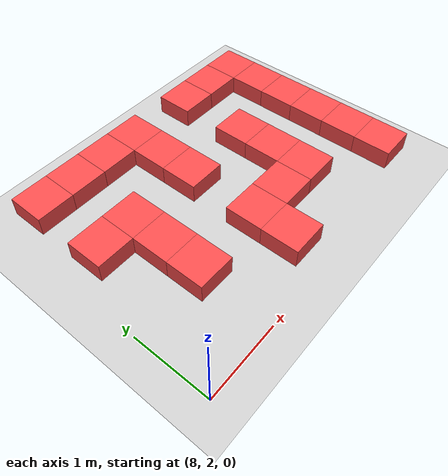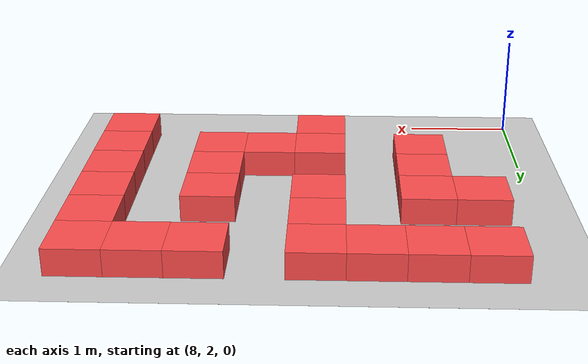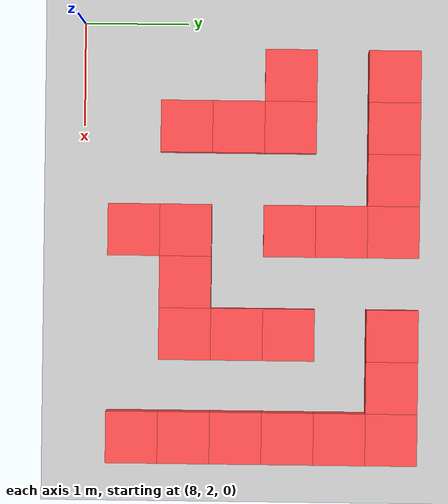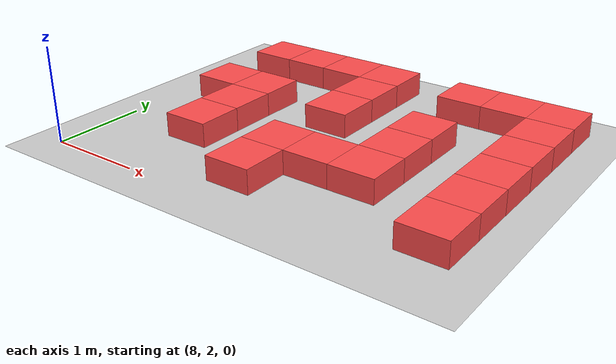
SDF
<sdf version="1.6">
 <world name="default">
  <model name="ground_plane">
   <static>1</static>
   <link name="link">
    <collision name="collision">
     <geometry><plane><normal>0 0 1</normal><size>100 100</size></plane></geometry>
     <surface><friction><ode><mu>100</mu><mu2>50</mu2></ode></friction></surface>
    </collision>
    <visual name="visual">
     <cast_shadows>0</cast_shadows>
     <geometry><plane><normal>0 0 1</normal><size>100 100</size></plane></geometry>
     <material>
      <script><uri>file://media/materials/scripts/gazebo.material</uri><name>Gazebo/Grey</name></script>
     </material>
    </visual>
   </link>
  </model>
  <model name="Box_Red_433">
   <link name="link_0">
    <inertial>
     <mass>1</mass>
     <inertia>
      <ixx>0.166667</ixx>
      <ixy>0</ixy>
      <ixz>0</ixz>
      <iyy>0.166667</iyy>
      <iyz>0</iyz>
      <izz>0.166667</izz>
     </inertia>
    </inertial>
    <visual name="visual">
     <geometry><box><size>0.5 0.5 0.5</size></box></geometry>
     <material>
      <lighting>1</lighting>
      <script><uri>file://media/materials/scripts/gazebo.material</uri><name>Gazebo/Grey</name></script>
      <ambient>1 0.3 0.3 1</ambient>
      <diffuse>0.7 0.7 0.7 1</diffuse>
      <specular>0.01 0.01 0.01 1</specular>
      <emissive>0 0 0 1</emissive>
      <shader type="vertex"><normal_map>__default__</normal_map></shader>
     </material>
    </visual>
    <collision name="collision">
     <geometry><box><size>0.5 0.5 0.5</size></box></geometry>
     <surface>
      <friction>
       <ode><mu>1</mu><mu2>1</mu2><fdir1>0 0 0</fdir1><slip1>0</slip1><slip2>0</slip2></ode>
       <torsional>
        <coefficient>1</coefficient>
        <patch_radius>0</patch_radius>
        <surface_radius>0</surface_radius>
        <use_patch_radius>1</use_patch_radius>
        <ode><slip>0</slip></ode>
       </torsional>
      </friction>
      <bounce><restitution_coefficient>0</restitution_coefficient><threshold>1e+06</threshold></bounce>
      <contact>
       <collide_without_contact>0</collide_without_contact>
       <collide_without_contact_bitmask>1</collide_without_contact_bitmask>
       <collide_bitmask>1</collide_bitmask>
       <ode>
        <soft_cfm>0</soft_cfm>
        <soft_erp>0.2</soft_erp>
        <kp>1e+13</kp>
        <kd>1</kd>
        <max_vel>0.01</max_vel>
        <min_depth>0</min_depth>
       </ode>
       <bullet>
        <split_impulse>1</split_impulse>
        <split_impulse_penetration_threshold>-0.01</split_impulse_penetration_threshold>
        <soft_cfm>0</soft_cfm>
        <soft_erp>0.2</soft_erp>
        <kp>1e+13</kp>
        <kd>1</kd>
       </bullet>
      </contact>
     </surface>
    </collision>
   </link>
   <static>0</static>
   <pose>8.500 4.000 0.000 0 0 0</pose>
  </model>
  <model name="Box_Red_435">
   <link name="link_0">
    <inertial>
     <mass>1</mass>
     <inertia>
      <ixx>0.166667</ixx>
      <ixy>0</ixy>
      <ixz>0</ixz>
      <iyy>0.166667</iyy>
      <iyz>0</iyz>
      <izz>0.166667</izz>
     </inertia>
    </inertial>
    <visual name="visual">
     <geometry><box><size>0.5 0.5 0.5</size></box></geometry>
     <material>
      <lighting>1</lighting>
      <script><uri>file://media/materials/scripts/gazebo.material</uri><name>Gazebo/Grey</name></script>
      <ambient>1 0.3 0.3 1</ambient>
      <diffuse>0.7 0.7 0.7 1</diffuse>
      <specular>0.01 0.01 0.01 1</specular>
      <emissive>0 0 0 1</emissive>
      <shader type="vertex"><normal_map>__default__</normal_map></shader>
     </material>
    </visual>
    <collision name="collision">
     <geometry><box><size>0.5 0.5 0.5</size></box></geometry>
     <surface>
      <friction>
       <ode><mu>1</mu><mu2>1</mu2><fdir1>0 0 0</fdir1><slip1>0</slip1><slip2>0</slip2></ode>
       <torsional>
        <coefficient>1</coefficient>
        <patch_radius>0</patch_radius>
        <surface_radius>0</surface_radius>
        <use_patch_radius>1</use_patch_radius>
        <ode><slip>0</slip></ode>
       </torsional>
      </friction>
      <bounce><restitution_coefficient>0</restitution_coefficient><threshold>1e+06</threshold></bounce>
      <contact>
       <collide_without_contact>0</collide_without_contact>
       <collide_without_contact_bitmask>1</collide_without_contact_bitmask>
       <collide_bitmask>1</collide_bitmask>
       <ode>
        <soft_cfm>0</soft_cfm>
        <soft_erp>0.2</soft_erp>
        <kp>1e+13</kp>
        <kd>1</kd>
        <max_vel>0.01</max_vel>
        <min_depth>0</min_depth>
       </ode>
       <bullet>
        <split_impulse>1</split_impulse>
        <split_impulse_penetration_threshold>-0.01</split_impulse_penetration_threshold>
        <soft_cfm>0</soft_cfm>
        <soft_erp>0.2</soft_erp>
        <kp>1e+13</kp>
        <kd>1</kd>
       </bullet>
      </contact>
     </surface>
    </collision>
   </link>
   <static>0</static>
   <pose>8.500 5.000 0.000 0 0 0</pose>
  </model>
  <model name="Box_Red_456">
   <link name="link_0">
    <inertial>
     <mass>1</mass>
     <inertia>
      <ixx>0.166667</ixx>
      <ixy>0</ixy>
      <ixz>0</ixz>
      <iyy>0.166667</iyy>
      <iyz>0</iyz>
      <izz>0.166667</izz>
     </inertia>
    </inertial>
    <visual name="visual">
     <geometry><box><size>0.5 0.5 0.5</size></box></geometry>
     <material>
      <lighting>1</lighting>
      <script><uri>file://media/materials/scripts/gazebo.material</uri><name>Gazebo/Grey</name></script>
      <ambient>1 0.3 0.3 1</ambient>
      <diffuse>0.7 0.7 0.7 1</diffuse>
      <specular>0.01 0.01 0.01 1</specular>
      <emissive>0 0 0 1</emissive>
      <shader type="vertex"><normal_map>__default__</normal_map></shader>
     </material>
    </visual>
    <collision name="collision">
     <geometry><box><size>0.5 0.5 0.5</size></box></geometry>
     <surface>
      <friction>
       <ode><mu>1</mu><mu2>1</mu2><fdir1>0 0 0</fdir1><slip1>0</slip1><slip2>0</slip2></ode>
       <torsional>
        <coefficient>1</coefficient>
        <patch_radius>0</patch_radius>
        <surface_radius>0</surface_radius>
        <use_patch_radius>1</use_patch_radius>
        <ode><slip>0</slip></ode>
       </torsional>
      </friction>
      <bounce><restitution_coefficient>0</restitution_coefficient><threshold>1e+06</threshold></bounce>
      <contact>
       <collide_without_contact>0</collide_without_contact>
       <collide_without_contact_bitmask>1</collide_without_contact_bitmask>
       <collide_bitmask>1</collide_bitmask>
       <ode>
        <soft_cfm>0</soft_cfm>
        <soft_erp>0.2</soft_erp>
        <kp>1e+13</kp>
        <kd>1</kd>
        <max_vel>0.01</max_vel>
        <min_depth>0</min_depth>
       </ode>
       <bullet>
        <split_impulse>1</split_impulse>
        <split_impulse_penetration_threshold>-0.01</split_impulse_penetration_threshold>
        <soft_cfm>0</soft_cfm>
        <soft_erp>0.2</soft_erp>
        <kp>1e+13</kp>
        <kd>1</kd>
       </bullet>
      </contact>
     </surface>
    </collision>
   </link>
   <static>0</static>
   <pose>9.000 3.000 0.000 0 0 0</pose>
  </model>
  <model name="Box_Red_457">
   <link name="link_0">
    <inertial>
     <mass>1</mass>
     <inertia>
      <ixx>0.166667</ixx>
      <ixy>0</ixy>
      <ixz>0</ixz>
      <iyy>0.166667</iyy>
      <iyz>0</iyz>
      <izz>0.166667</izz>
     </inertia>
    </inertial>
    <visual name="visual">
     <geometry><box><size>0.5 0.5 0.5</size></box></geometry>
     <material>
      <lighting>1</lighting>
      <script><uri>file://media/materials/scripts/gazebo.material</uri><name>Gazebo/Grey</name></script>
      <ambient>1 0.3 0.3 1</ambient>
      <diffuse>0.7 0.7 0.7 1</diffuse>
      <specular>0.01 0.01 0.01 1</specular>
      <emissive>0 0 0 1</emissive>
      <shader type="vertex"><normal_map>__default__</normal_map></shader>
     </material>
    </visual>
    <collision name="collision">
     <geometry><box><size>0.5 0.5 0.5</size></box></geometry>
     <surface>
      <friction>
       <ode><mu>1</mu><mu2>1</mu2><fdir1>0 0 0</fdir1><slip1>0</slip1><slip2>0</slip2></ode>
       <torsional>
        <coefficient>1</coefficient>
        <patch_radius>0</patch_radius>
        <surface_radius>0</surface_radius>
        <use_patch_radius>1</use_patch_radius>
        <ode><slip>0</slip></ode>
       </torsional>
      </friction>
      <bounce><restitution_coefficient>0</restitution_coefficient><threshold>1e+06</threshold></bounce>
      <contact>
       <collide_without_contact>0</collide_without_contact>
       <collide_without_contact_bitmask>1</collide_without_contact_bitmask>
       <collide_bitmask>1</collide_bitmask>
       <ode>
        <soft_cfm>0</soft_cfm>
        <soft_erp>0.2</soft_erp>
        <kp>1e+13</kp>
        <kd>1</kd>
        <max_vel>0.01</max_vel>
        <min_depth>0</min_depth>
       </ode>
       <bullet>
        <split_impulse>1</split_impulse>
        <split_impulse_penetration_threshold>-0.01</split_impulse_penetration_threshold>
        <soft_cfm>0</soft_cfm>
        <soft_erp>0.2</soft_erp>
        <kp>1e+13</kp>
        <kd>1</kd>
       </bullet>
      </contact>
     </surface>
    </collision>
   </link>
   <static>0</static>
   <pose>9.000 3.500 0.000 0 0 0</pose>
  </model>
  <model name="Box_Red_458">
   <link name="link_0">
    <inertial>
     <mass>1</mass>
     <inertia>
      <ixx>0.166667</ixx>
      <ixy>0</ixy>
      <ixz>0</ixz>
      <iyy>0.166667</iyy>
      <iyz>0</iyz>
      <izz>0.166667</izz>
     </inertia>
    </inertial>
    <visual name="visual">
     <geometry><box><size>0.5 0.5 0.5</size></box></geometry>
     <material>
      <lighting>1</lighting>
      <script><uri>file://media/materials/scripts/gazebo.material</uri><name>Gazebo/Grey</name></script>
      <ambient>1 0.3 0.3 1</ambient>
      <diffuse>0.7 0.7 0.7 1</diffuse>
      <specular>0.01 0.01 0.01 1</specular>
      <emissive>0 0 0 1</emissive>
      <shader type="vertex"><normal_map>__default__</normal_map></shader>
     </material>
    </visual>
    <collision name="collision">
     <geometry><box><size>0.5 0.5 0.5</size></box></geometry>
     <surface>
      <friction>
       <ode><mu>1</mu><mu2>1</mu2><fdir1>0 0 0</fdir1><slip1>0</slip1><slip2>0</slip2></ode>
       <torsional>
        <coefficient>1</coefficient>
        <patch_radius>0</patch_radius>
        <surface_radius>0</surface_radius>
        <use_patch_radius>1</use_patch_radius>
        <ode><slip>0</slip></ode>
       </torsional>
      </friction>
      <bounce><restitution_coefficient>0</restitution_coefficient><threshold>1e+06</threshold></bounce>
      <contact>
       <collide_without_contact>0</collide_without_contact>
       <collide_without_contact_bitmask>1</collide_without_contact_bitmask>
       <collide_bitmask>1</collide_bitmask>
       <ode>
        <soft_cfm>0</soft_cfm>
        <soft_erp>0.2</soft_erp>
        <kp>1e+13</kp>
        <kd>1</kd>
        <max_vel>0.01</max_vel>
        <min_depth>0</min_depth>
       </ode>
       <bullet>
        <split_impulse>1</split_impulse>
        <split_impulse_penetration_threshold>-0.01</split_impulse_penetration_threshold>
        <soft_cfm>0</soft_cfm>
        <soft_erp>0.2</soft_erp>
        <kp>1e+13</kp>
        <kd>1</kd>
       </bullet>
      </contact>
     </surface>
    </collision>
   </link>
   <static>0</static>
   <pose>9.000 4.000 0.000 0 0 0</pose>
  </model>
  <model name="Box_Red_460">
   <link name="link_0">
    <inertial>
     <mass>1</mass>
     <inertia>
      <ixx>0.166667</ixx>
      <ixy>0</ixy>
      <ixz>0</ixz>
      <iyy>0.166667</iyy>
      <iyz>0</iyz>
      <izz>0.166667</izz>
     </inertia>
    </inertial>
    <visual name="visual">
     <geometry><box><size>0.5 0.5 0.5</size></box></geometry>
     <material>
      <lighting>1</lighting>
      <script><uri>file://media/materials/scripts/gazebo.material</uri><name>Gazebo/Grey</name></script>
      <ambient>1 0.3 0.3 1</ambient>
      <diffuse>0.7 0.7 0.7 1</diffuse>
      <specular>0.01 0.01 0.01 1</specular>
      <emissive>0 0 0 1</emissive>
      <shader type="vertex"><normal_map>__default__</normal_map></shader>
     </material>
    </visual>
    <collision name="collision">
     <geometry><box><size>0.5 0.5 0.5</size></box></geometry>
     <surface>
      <friction>
       <ode><mu>1</mu><mu2>1</mu2><fdir1>0 0 0</fdir1><slip1>0</slip1><slip2>0</slip2></ode>
       <torsional>
        <coefficient>1</coefficient>
        <patch_radius>0</patch_radius>
        <surface_radius>0</surface_radius>
        <use_patch_radius>1</use_patch_radius>
        <ode><slip>0</slip></ode>
       </torsional>
      </friction>
      <bounce><restitution_coefficient>0</restitution_coefficient><threshold>1e+06</threshold></bounce>
      <contact>
       <collide_without_contact>0</collide_without_contact>
       <collide_without_contact_bitmask>1</collide_without_contact_bitmask>
       <collide_bitmask>1</collide_bitmask>
       <ode>
        <soft_cfm>0</soft_cfm>
        <soft_erp>0.2</soft_erp>
        <kp>1e+13</kp>
        <kd>1</kd>
        <max_vel>0.01</max_vel>
        <min_depth>0</min_depth>
       </ode>
       <bullet>
        <split_impulse>1</split_impulse>
        <split_impulse_penetration_threshold>-0.01</split_impulse_penetration_threshold>
        <soft_cfm>0</soft_cfm>
        <soft_erp>0.2</soft_erp>
        <kp>1e+13</kp>
        <kd>1</kd>
       </bullet>
      </contact>
     </surface>
    </collision>
   </link>
   <static>0</static>
   <pose>9.000 5.000 0.000 0 0 0</pose>
  </model>
  <model name="Box_Red_485">
   <link name="link_0">
    <inertial>
     <mass>1</mass>
     <inertia>
      <ixx>0.166667</ixx>
      <ixy>0</ixy>
      <ixz>0</ixz>
      <iyy>0.166667</iyy>
      <iyz>0</iyz>
      <izz>0.166667</izz>
     </inertia>
    </inertial>
    <visual name="visual">
     <geometry><box><size>0.5 0.5 0.5</size></box></geometry>
     <material>
      <lighting>1</lighting>
      <script><uri>file://media/materials/scripts/gazebo.material</uri><name>Gazebo/Grey</name></script>
      <ambient>1 0.3 0.3 1</ambient>
      <diffuse>0.7 0.7 0.7 1</diffuse>
      <specular>0.01 0.01 0.01 1</specular>
      <emissive>0 0 0 1</emissive>
      <shader type="vertex"><normal_map>__default__</normal_map></shader>
     </material>
    </visual>
    <collision name="collision">
     <geometry><box><size>0.5 0.5 0.5</size></box></geometry>
     <surface>
      <friction>
       <ode><mu>1</mu><mu2>1</mu2><fdir1>0 0 0</fdir1><slip1>0</slip1><slip2>0</slip2></ode>
       <torsional>
        <coefficient>1</coefficient>
        <patch_radius>0</patch_radius>
        <surface_radius>0</surface_radius>
        <use_patch_radius>1</use_patch_radius>
        <ode><slip>0</slip></ode>
       </torsional>
      </friction>
      <bounce><restitution_coefficient>0</restitution_coefficient><threshold>1e+06</threshold></bounce>
      <contact>
       <collide_without_contact>0</collide_without_contact>
       <collide_without_contact_bitmask>1</collide_without_contact_bitmask>
       <collide_bitmask>1</collide_bitmask>
       <ode>
        <soft_cfm>0</soft_cfm>
        <soft_erp>0.2</soft_erp>
        <kp>1e+13</kp>
        <kd>1</kd>
        <max_vel>0.01</max_vel>
        <min_depth>0</min_depth>
       </ode>
       <bullet>
        <split_impulse>1</split_impulse>
        <split_impulse_penetration_threshold>-0.01</split_impulse_penetration_threshold>
        <soft_cfm>0</soft_cfm>
        <soft_erp>0.2</soft_erp>
        <kp>1e+13</kp>
        <kd>1</kd>
       </bullet>
      </contact>
     </surface>
    </collision>
   </link>
   <static>0</static>
   <pose>9.500 5.000 0.000 0 0 0</pose>
  </model>
  <model name="Box_Red_505">
   <link name="link_0">
    <inertial>
     <mass>1</mass>
     <inertia>
      <ixx>0.166667</ixx>
      <ixy>0</ixy>
      <ixz>0</ixz>
      <iyy>0.166667</iyy>
      <iyz>0</iyz>
      <izz>0.166667</izz>
     </inertia>
    </inertial>
    <visual name="visual">
     <geometry><box><size>0.5 0.5 0.5</size></box></geometry>
     <material>
      <lighting>1</lighting>
      <script><uri>file://media/materials/scripts/gazebo.material</uri><name>Gazebo/Grey</name></script>
      <ambient>1 0.3 0.3 1</ambient>
      <diffuse>0.7 0.7 0.7 1</diffuse>
      <specular>0.01 0.01 0.01 1</specular>
      <emissive>0 0 0 1</emissive>
      <shader type="vertex"><normal_map>__default__</normal_map></shader>
     </material>
    </visual>
    <collision name="collision">
     <geometry><box><size>0.5 0.5 0.5</size></box></geometry>
     <surface>
      <friction>
       <ode><mu>1</mu><mu2>1</mu2><fdir1>0 0 0</fdir1><slip1>0</slip1><slip2>0</slip2></ode>
       <torsional>
        <coefficient>1</coefficient>
        <patch_radius>0</patch_radius>
        <surface_radius>0</surface_radius>
        <use_patch_radius>1</use_patch_radius>
        <ode><slip>0</slip></ode>
       </torsional>
      </friction>
      <bounce><restitution_coefficient>0</restitution_coefficient><threshold>1e+06</threshold></bounce>
      <contact>
       <collide_without_contact>0</collide_without_contact>
       <collide_without_contact_bitmask>1</collide_without_contact_bitmask>
       <collide_bitmask>1</collide_bitmask>
       <ode>
        <soft_cfm>0</soft_cfm>
        <soft_erp>0.2</soft_erp>
        <kp>1e+13</kp>
        <kd>1</kd>
        <max_vel>0.01</max_vel>
        <min_depth>0</min_depth>
       </ode>
       <bullet>
        <split_impulse>1</split_impulse>
        <split_impulse_penetration_threshold>-0.01</split_impulse_penetration_threshold>
        <soft_cfm>0</soft_cfm>
        <soft_erp>0.2</soft_erp>
        <kp>1e+13</kp>
        <kd>1</kd>
       </bullet>
      </contact>
     </surface>
    </collision>
   </link>
   <static>0</static>
   <pose>10.000 2.500 0.000 0 0 0</pose>
  </model>
  <model name="Box_Red_506">
   <link name="link_0">
    <inertial>
     <mass>1</mass>
     <inertia>
      <ixx>0.166667</ixx>
      <ixy>0</ixy>
      <ixz>0</ixz>
      <iyy>0.166667</iyy>
      <iyz>0</iyz>
      <izz>0.166667</izz>
     </inertia>
    </inertial>
    <visual name="visual">
     <geometry><box><size>0.5 0.5 0.5</size></box></geometry>
     <material>
      <lighting>1</lighting>
      <script><uri>file://media/materials/scripts/gazebo.material</uri><name>Gazebo/Grey</name></script>
      <ambient>1 0.3 0.3 1</ambient>
      <diffuse>0.7 0.7 0.7 1</diffuse>
      <specular>0.01 0.01 0.01 1</specular>
      <emissive>0 0 0 1</emissive>
      <shader type="vertex"><normal_map>__default__</normal_map></shader>
     </material>
    </visual>
    <collision name="collision">
     <geometry><box><size>0.5 0.5 0.5</size></box></geometry>
     <surface>
      <friction>
       <ode><mu>1</mu><mu2>1</mu2><fdir1>0 0 0</fdir1><slip1>0</slip1><slip2>0</slip2></ode>
       <torsional>
        <coefficient>1</coefficient>
        <patch_radius>0</patch_radius>
        <surface_radius>0</surface_radius>
        <use_patch_radius>1</use_patch_radius>
        <ode><slip>0</slip></ode>
       </torsional>
      </friction>
      <bounce><restitution_coefficient>0</restitution_coefficient><threshold>1e+06</threshold></bounce>
      <contact>
       <collide_without_contact>0</collide_without_contact>
       <collide_without_contact_bitmask>1</collide_without_contact_bitmask>
       <collide_bitmask>1</collide_bitmask>
       <ode>
        <soft_cfm>0</soft_cfm>
        <soft_erp>0.2</soft_erp>
        <kp>1e+13</kp>
        <kd>1</kd>
        <max_vel>0.01</max_vel>
        <min_depth>0</min_depth>
       </ode>
       <bullet>
        <split_impulse>1</split_impulse>
        <split_impulse_penetration_threshold>-0.01</split_impulse_penetration_threshold>
        <soft_cfm>0</soft_cfm>
        <soft_erp>0.2</soft_erp>
        <kp>1e+13</kp>
        <kd>1</kd>
       </bullet>
      </contact>
     </surface>
    </collision>
   </link>
   <static>0</static>
   <pose>10.000 3.000 0.000 0 0 0</pose>
  </model>
  <model name="Box_Red_508">
   <link name="link_0">
    <inertial>
     <mass>1</mass>
     <inertia>
      <ixx>0.166667</ixx>
      <ixy>0</ixy>
      <ixz>0</ixz>
      <iyy>0.166667</iyy>
      <iyz>0</iyz>
      <izz>0.166667</izz>
     </inertia>
    </inertial>
    <visual name="visual">
     <geometry><box><size>0.5 0.5 0.5</size></box></geometry>
     <material>
      <lighting>1</lighting>
      <script><uri>file://media/materials/scripts/gazebo.material</uri><name>Gazebo/Grey</name></script>
      <ambient>1 0.3 0.3 1</ambient>
      <diffuse>0.7 0.7 0.7 1</diffuse>
      <specular>0.01 0.01 0.01 1</specular>
      <emissive>0 0 0 1</emissive>
      <shader type="vertex"><normal_map>__default__</normal_map></shader>
     </material>
    </visual>
    <collision name="collision">
     <geometry><box><size>0.5 0.5 0.5</size></box></geometry>
     <surface>
      <friction>
       <ode><mu>1</mu><mu2>1</mu2><fdir1>0 0 0</fdir1><slip1>0</slip1><slip2>0</slip2></ode>
       <torsional>
        <coefficient>1</coefficient>
        <patch_radius>0</patch_radius>
        <surface_radius>0</surface_radius>
        <use_patch_radius>1</use_patch_radius>
        <ode><slip>0</slip></ode>
       </torsional>
      </friction>
      <bounce><restitution_coefficient>0</restitution_coefficient><threshold>1e+06</threshold></bounce>
      <contact>
       <collide_without_contact>0</collide_without_contact>
       <collide_without_contact_bitmask>1</collide_without_contact_bitmask>
       <collide_bitmask>1</collide_bitmask>
       <ode>
        <soft_cfm>0</soft_cfm>
        <soft_erp>0.2</soft_erp>
        <kp>1e+13</kp>
        <kd>1</kd>
        <max_vel>0.01</max_vel>
        <min_depth>0</min_depth>
       </ode>
       <bullet>
        <split_impulse>1</split_impulse>
        <split_impulse_penetration_threshold>-0.01</split_impulse_penetration_threshold>
        <soft_cfm>0</soft_cfm>
        <soft_erp>0.2</soft_erp>
        <kp>1e+13</kp>
        <kd>1</kd>
       </bullet>
      </contact>
     </surface>
    </collision>
   </link>
   <static>0</static>
   <pose>10.000 4.000 0.000 0 0 0</pose>
  </model>
  <model name="Box_Red_509">
   <link name="link_0">
    <inertial>
     <mass>1</mass>
     <inertia>
      <ixx>0.166667</ixx>
      <ixy>0</ixy>
      <ixz>0</ixz>
      <iyy>0.166667</iyy>
      <iyz>0</iyz>
      <izz>0.166667</izz>
     </inertia>
    </inertial>
    <visual name="visual">
     <geometry><box><size>0.5 0.5 0.5</size></box></geometry>
     <material>
      <lighting>1</lighting>
      <script><uri>file://media/materials/scripts/gazebo.material</uri><name>Gazebo/Grey</name></script>
      <ambient>1 0.3 0.3 1</ambient>
      <diffuse>0.7 0.7 0.7 1</diffuse>
      <specular>0.01 0.01 0.01 1</specular>
      <emissive>0 0 0 1</emissive>
      <shader type="vertex"><normal_map>__default__</normal_map></shader>
     </material>
    </visual>
    <collision name="collision">
     <geometry><box><size>0.5 0.5 0.5</size></box></geometry>
     <surface>
      <friction>
       <ode><mu>1</mu><mu2>1</mu2><fdir1>0 0 0</fdir1><slip1>0</slip1><slip2>0</slip2></ode>
       <torsional>
        <coefficient>1</coefficient>
        <patch_radius>0</patch_radius>
        <surface_radius>0</surface_radius>
        <use_patch_radius>1</use_patch_radius>
        <ode><slip>0</slip></ode>
       </torsional>
      </friction>
      <bounce><restitution_coefficient>0</restitution_coefficient><threshold>1e+06</threshold></bounce>
      <contact>
       <collide_without_contact>0</collide_without_contact>
       <collide_without_contact_bitmask>1</collide_without_contact_bitmask>
       <collide_bitmask>1</collide_bitmask>
       <ode>
        <soft_cfm>0</soft_cfm>
        <soft_erp>0.2</soft_erp>
        <kp>1e+13</kp>
        <kd>1</kd>
        <max_vel>0.01</max_vel>
        <min_depth>0</min_depth>
       </ode>
       <bullet>
        <split_impulse>1</split_impulse>
        <split_impulse_penetration_threshold>-0.01</split_impulse_penetration_threshold>
        <soft_cfm>0</soft_cfm>
        <soft_erp>0.2</soft_erp>
        <kp>1e+13</kp>
        <kd>1</kd>
       </bullet>
      </contact>
     </surface>
    </collision>
   </link>
   <static>0</static>
   <pose>10.000 4.500 0.000 0 0 0</pose>
  </model>
  <model name="Box_Red_510">
   <link name="link_0">
    <inertial>
     <mass>1</mass>
     <inertia>
      <ixx>0.166667</ixx>
      <ixy>0</ixy>
      <ixz>0</ixz>
      <iyy>0.166667</iyy>
      <iyz>0</iyz>
      <izz>0.166667</izz>
     </inertia>
    </inertial>
    <visual name="visual">
     <geometry><box><size>0.5 0.5 0.5</size></box></geometry>
     <material>
      <lighting>1</lighting>
      <script><uri>file://media/materials/scripts/gazebo.material</uri><name>Gazebo/Grey</name></script>
      <ambient>1 0.3 0.3 1</ambient>
      <diffuse>0.7 0.7 0.7 1</diffuse>
      <specular>0.01 0.01 0.01 1</specular>
      <emissive>0 0 0 1</emissive>
      <shader type="vertex"><normal_map>__default__</normal_map></shader>
     </material>
    </visual>
    <collision name="collision">
     <geometry><box><size>0.5 0.5 0.5</size></box></geometry>
     <surface>
      <friction>
       <ode><mu>1</mu><mu2>1</mu2><fdir1>0 0 0</fdir1><slip1>0</slip1><slip2>0</slip2></ode>
       <torsional>
        <coefficient>1</coefficient>
        <patch_radius>0</patch_radius>
        <surface_radius>0</surface_radius>
        <use_patch_radius>1</use_patch_radius>
        <ode><slip>0</slip></ode>
       </torsional>
      </friction>
      <bounce><restitution_coefficient>0</restitution_coefficient><threshold>1e+06</threshold></bounce>
      <contact>
       <collide_without_contact>0</collide_without_contact>
       <collide_without_contact_bitmask>1</collide_without_contact_bitmask>
       <collide_bitmask>1</collide_bitmask>
       <ode>
        <soft_cfm>0</soft_cfm>
        <soft_erp>0.2</soft_erp>
        <kp>1e+13</kp>
        <kd>1</kd>
        <max_vel>0.01</max_vel>
        <min_depth>0</min_depth>
       </ode>
       <bullet>
        <split_impulse>1</split_impulse>
        <split_impulse_penetration_threshold>-0.01</split_impulse_penetration_threshold>
        <soft_cfm>0</soft_cfm>
        <soft_erp>0.2</soft_erp>
        <kp>1e+13</kp>
        <kd>1</kd>
       </bullet>
      </contact>
     </surface>
    </collision>
   </link>
   <static>0</static>
   <pose>10.000 5.000 0.000 0 0 0</pose>
  </model>
  <model name="Box_Red_531">
   <link name="link_0">
    <inertial>
     <mass>1</mass>
     <inertia>
      <ixx>0.166667</ixx>
      <ixy>0</ixy>
      <ixz>0</ixz>
      <iyy>0.166667</iyy>
      <iyz>0</iyz>
      <izz>0.166667</izz>
     </inertia>
    </inertial>
    <visual name="visual">
     <geometry><box><size>0.5 0.5 0.5</size></box></geometry>
     <material>
      <lighting>1</lighting>
      <script><uri>file://media/materials/scripts/gazebo.material</uri><name>Gazebo/Grey</name></script>
      <ambient>1 0.3 0.3 1</ambient>
      <diffuse>0.7 0.7 0.7 1</diffuse>
      <specular>0.01 0.01 0.01 1</specular>
      <emissive>0 0 0 1</emissive>
      <shader type="vertex"><normal_map>__default__</normal_map></shader>
     </material>
    </visual>
    <collision name="collision">
     <geometry><box><size>0.5 0.5 0.5</size></box></geometry>
     <surface>
      <friction>
       <ode><mu>1</mu><mu2>1</mu2><fdir1>0 0 0</fdir1><slip1>0</slip1><slip2>0</slip2></ode>
       <torsional>
        <coefficient>1</coefficient>
        <patch_radius>0</patch_radius>
        <surface_radius>0</surface_radius>
        <use_patch_radius>1</use_patch_radius>
        <ode><slip>0</slip></ode>
       </torsional>
      </friction>
      <bounce><restitution_coefficient>0</restitution_coefficient><threshold>1e+06</threshold></bounce>
      <contact>
       <collide_without_contact>0</collide_without_contact>
       <collide_without_contact_bitmask>1</collide_without_contact_bitmask>
       <collide_bitmask>1</collide_bitmask>
       <ode>
        <soft_cfm>0</soft_cfm>
        <soft_erp>0.2</soft_erp>
        <kp>1e+13</kp>
        <kd>1</kd>
        <max_vel>0.01</max_vel>
        <min_depth>0</min_depth>
       </ode>
       <bullet>
        <split_impulse>1</split_impulse>
        <split_impulse_penetration_threshold>-0.01</split_impulse_penetration_threshold>
        <soft_cfm>0</soft_cfm>
        <soft_erp>0.2</soft_erp>
        <kp>1e+13</kp>
        <kd>1</kd>
       </bullet>
      </contact>
     </surface>
    </collision>
   </link>
   <static>0</static>
   <pose>10.500 3.000 0.000 0 0 0</pose>
  </model>
  <model name="Box_Red_556">
   <link name="link_0">
    <inertial>
     <mass>1</mass>
     <inertia>
      <ixx>0.166667</ixx>
      <ixy>0</ixy>
      <ixz>0</ixz>
      <iyy>0.166667</iyy>
      <iyz>0</iyz>
      <izz>0.166667</izz>
     </inertia>
    </inertial>
    <visual name="visual">
     <geometry><box><size>0.5 0.5 0.5</size></box></geometry>
     <material>
      <lighting>1</lighting>
      <script><uri>file://media/materials/scripts/gazebo.material</uri><name>Gazebo/Grey</name></script>
      <ambient>1 0.3 0.3 1</ambient>
      <diffuse>0.7 0.7 0.7 1</diffuse>
      <specular>0.01 0.01 0.01 1</specular>
      <emissive>0 0 0 1</emissive>
      <shader type="vertex"><normal_map>__default__</normal_map></shader>
     </material>
    </visual>
    <collision name="collision">
     <geometry><box><size>0.5 0.5 0.5</size></box></geometry>
     <surface>
      <friction>
       <ode><mu>1</mu><mu2>1</mu2><fdir1>0 0 0</fdir1><slip1>0</slip1><slip2>0</slip2></ode>
       <torsional>
        <coefficient>1</coefficient>
        <patch_radius>0</patch_radius>
        <surface_radius>0</surface_radius>
        <use_patch_radius>1</use_patch_radius>
        <ode><slip>0</slip></ode>
       </torsional>
      </friction>
      <bounce><restitution_coefficient>0</restitution_coefficient><threshold>1e+06</threshold></bounce>
      <contact>
       <collide_without_contact>0</collide_without_contact>
       <collide_without_contact_bitmask>1</collide_without_contact_bitmask>
       <collide_bitmask>1</collide_bitmask>
       <ode>
        <soft_cfm>0</soft_cfm>
        <soft_erp>0.2</soft_erp>
        <kp>1e+13</kp>
        <kd>1</kd>
        <max_vel>0.01</max_vel>
        <min_depth>0</min_depth>
       </ode>
       <bullet>
        <split_impulse>1</split_impulse>
        <split_impulse_penetration_threshold>-0.01</split_impulse_penetration_threshold>
        <soft_cfm>0</soft_cfm>
        <soft_erp>0.2</soft_erp>
        <kp>1e+13</kp>
        <kd>1</kd>
       </bullet>
      </contact>
     </surface>
    </collision>
   </link>
   <static>0</static>
   <pose>11.000 3.000 0.000 0 0 0</pose>
  </model>
  <model name="Box_Red_557">
   <link name="link_0">
    <inertial>
     <mass>1</mass>
     <inertia>
      <ixx>0.166667</ixx>
      <ixy>0</ixy>
      <ixz>0</ixz>
      <iyy>0.166667</iyy>
      <iyz>0</iyz>
      <izz>0.166667</izz>
     </inertia>
    </inertial>
    <visual name="visual">
     <geometry><box><size>0.5 0.5 0.5</size></box></geometry>
     <material>
      <lighting>1</lighting>
      <script><uri>file://media/materials/scripts/gazebo.material</uri><name>Gazebo/Grey</name></script>
      <ambient>1 0.3 0.3 1</ambient>
      <diffuse>0.7 0.7 0.7 1</diffuse>
      <specular>0.01 0.01 0.01 1</specular>
      <emissive>0 0 0 1</emissive>
      <shader type="vertex"><normal_map>__default__</normal_map></shader>
     </material>
    </visual>
    <collision name="collision">
     <geometry><box><size>0.5 0.5 0.5</size></box></geometry>
     <surface>
      <friction>
       <ode><mu>1</mu><mu2>1</mu2><fdir1>0 0 0</fdir1><slip1>0</slip1><slip2>0</slip2></ode>
       <torsional>
        <coefficient>1</coefficient>
        <patch_radius>0</patch_radius>
        <surface_radius>0</surface_radius>
        <use_patch_radius>1</use_patch_radius>
        <ode><slip>0</slip></ode>
       </torsional>
      </friction>
      <bounce><restitution_coefficient>0</restitution_coefficient><threshold>1e+06</threshold></bounce>
      <contact>
       <collide_without_contact>0</collide_without_contact>
       <collide_without_contact_bitmask>1</collide_without_contact_bitmask>
       <collide_bitmask>1</collide_bitmask>
       <ode>
        <soft_cfm>0</soft_cfm>
        <soft_erp>0.2</soft_erp>
        <kp>1e+13</kp>
        <kd>1</kd>
        <max_vel>0.01</max_vel>
        <min_depth>0</min_depth>
       </ode>
       <bullet>
        <split_impulse>1</split_impulse>
        <split_impulse_penetration_threshold>-0.01</split_impulse_penetration_threshold>
        <soft_cfm>0</soft_cfm>
        <soft_erp>0.2</soft_erp>
        <kp>1e+13</kp>
        <kd>1</kd>
       </bullet>
      </contact>
     </surface>
    </collision>
   </link>
   <static>0</static>
   <pose>11.000 3.500 0.000 0 0 0</pose>
  </model>
  <model name="Box_Red_558">
   <link name="link_0">
    <inertial>
     <mass>1</mass>
     <inertia>
      <ixx>0.166667</ixx>
      <ixy>0</ixy>
      <ixz>0</ixz>
      <iyy>0.166667</iyy>
      <iyz>0</iyz>
      <izz>0.166667</izz>
     </inertia>
    </inertial>
    <visual name="visual">
     <geometry><box><size>0.5 0.5 0.5</size></box></geometry>
     <material>
      <lighting>1</lighting>
      <script><uri>file://media/materials/scripts/gazebo.material</uri><name>Gazebo/Grey</name></script>
      <ambient>1 0.3 0.3 1</ambient>
      <diffuse>0.7 0.7 0.7 1</diffuse>
      <specular>0.01 0.01 0.01 1</specular>
      <emissive>0 0 0 1</emissive>
      <shader type="vertex"><normal_map>__default__</normal_map></shader>
     </material>
    </visual>
    <collision name="collision">
     <geometry><box><size>0.5 0.5 0.5</size></box></geometry>
     <surface>
      <friction>
       <ode><mu>1</mu><mu2>1</mu2><fdir1>0 0 0</fdir1><slip1>0</slip1><slip2>0</slip2></ode>
       <torsional>
        <coefficient>1</coefficient>
        <patch_radius>0</patch_radius>
        <surface_radius>0</surface_radius>
        <use_patch_radius>1</use_patch_radius>
        <ode><slip>0</slip></ode>
       </torsional>
      </friction>
      <bounce><restitution_coefficient>0</restitution_coefficient><threshold>1e+06</threshold></bounce>
      <contact>
       <collide_without_contact>0</collide_without_contact>
       <collide_without_contact_bitmask>1</collide_without_contact_bitmask>
       <collide_bitmask>1</collide_bitmask>
       <ode>
        <soft_cfm>0</soft_cfm>
        <soft_erp>0.2</soft_erp>
        <kp>1e+13</kp>
        <kd>1</kd>
        <max_vel>0.01</max_vel>
        <min_depth>0</min_depth>
       </ode>
       <bullet>
        <split_impulse>1</split_impulse>
        <split_impulse_penetration_threshold>-0.01</split_impulse_penetration_threshold>
        <soft_cfm>0</soft_cfm>
        <soft_erp>0.2</soft_erp>
        <kp>1e+13</kp>
        <kd>1</kd>
       </bullet>
      </contact>
     </surface>
    </collision>
   </link>
   <static>0</static>
   <pose>11.000 4.000 0.000 0 0 0</pose>
  </model>
  <model name="Box_Red_560">
   <link name="link_0">
    <inertial>
     <mass>1</mass>
     <inertia>
      <ixx>0.166667</ixx>
      <ixy>0</ixy>
      <ixz>0</ixz>
      <iyy>0.166667</iyy>
      <iyz>0</iyz>
      <izz>0.166667</izz>
     </inertia>
    </inertial>
    <visual name="visual">
     <geometry><box><size>0.5 0.5 0.5</size></box></geometry>
     <material>
      <lighting>1</lighting>
      <script><uri>file://media/materials/scripts/gazebo.material</uri><name>Gazebo/Grey</name></script>
      <ambient>1 0.3 0.3 1</ambient>
      <diffuse>0.7 0.7 0.7 1</diffuse>
      <specular>0.01 0.01 0.01 1</specular>
      <emissive>0 0 0 1</emissive>
      <shader type="vertex"><normal_map>__default__</normal_map></shader>
     </material>
    </visual>
    <collision name="collision">
     <geometry><box><size>0.5 0.5 0.5</size></box></geometry>
     <surface>
      <friction>
       <ode><mu>1</mu><mu2>1</mu2><fdir1>0 0 0</fdir1><slip1>0</slip1><slip2>0</slip2></ode>
       <torsional>
        <coefficient>1</coefficient>
        <patch_radius>0</patch_radius>
        <surface_radius>0</surface_radius>
        <use_patch_radius>1</use_patch_radius>
        <ode><slip>0</slip></ode>
       </torsional>
      </friction>
      <bounce><restitution_coefficient>0</restitution_coefficient><threshold>1e+06</threshold></bounce>
      <contact>
       <collide_without_contact>0</collide_without_contact>
       <collide_without_contact_bitmask>1</collide_without_contact_bitmask>
       <collide_bitmask>1</collide_bitmask>
       <ode>
        <soft_cfm>0</soft_cfm>
        <soft_erp>0.2</soft_erp>
        <kp>1e+13</kp>
        <kd>1</kd>
        <max_vel>0.01</max_vel>
        <min_depth>0</min_depth>
       </ode>
       <bullet>
        <split_impulse>1</split_impulse>
        <split_impulse_penetration_threshold>-0.01</split_impulse_penetration_threshold>
        <soft_cfm>0</soft_cfm>
        <soft_erp>0.2</soft_erp>
        <kp>1e+13</kp>
        <kd>1</kd>
       </bullet>
      </contact>
     </surface>
    </collision>
   </link>
   <static>0</static>
   <pose>11.000 5.000 0.000 0 0 0</pose>
  </model>
  <model name="Box_Red_585">
   <link name="link_0">
    <inertial>
     <mass>1</mass>
     <inertia>
      <ixx>0.166667</ixx>
      <ixy>0</ixy>
      <ixz>0</ixz>
      <iyy>0.166667</iyy>
      <iyz>0</iyz>
      <izz>0.166667</izz>
     </inertia>
    </inertial>
    <visual name="visual">
     <geometry><box><size>0.5 0.5 0.5</size></box></geometry>
     <material>
      <lighting>1</lighting>
      <script><uri>file://media/materials/scripts/gazebo.material</uri><name>Gazebo/Grey</name></script>
      <ambient>1 0.3 0.3 1</ambient>
      <diffuse>0.7 0.7 0.7 1</diffuse>
      <specular>0.01 0.01 0.01 1</specular>
      <emissive>0 0 0 1</emissive>
      <shader type="vertex"><normal_map>__default__</normal_map></shader>
     </material>
    </visual>
    <collision name="collision">
     <geometry><box><size>0.5 0.5 0.5</size></box></geometry>
     <surface>
      <friction>
       <ode><mu>1</mu><mu2>1</mu2><fdir1>0 0 0</fdir1><slip1>0</slip1><slip2>0</slip2></ode>
       <torsional>
        <coefficient>1</coefficient>
        <patch_radius>0</patch_radius>
        <surface_radius>0</surface_radius>
        <use_patch_radius>1</use_patch_radius>
        <ode><slip>0</slip></ode>
       </torsional>
      </friction>
      <bounce><restitution_coefficient>0</restitution_coefficient><threshold>1e+06</threshold></bounce>
      <contact>
       <collide_without_contact>0</collide_without_contact>
       <collide_without_contact_bitmask>1</collide_without_contact_bitmask>
       <collide_bitmask>1</collide_bitmask>
       <ode>
        <soft_cfm>0</soft_cfm>
        <soft_erp>0.2</soft_erp>
        <kp>1e+13</kp>
        <kd>1</kd>
        <max_vel>0.01</max_vel>
        <min_depth>0</min_depth>
       </ode>
       <bullet>
        <split_impulse>1</split_impulse>
        <split_impulse_penetration_threshold>-0.01</split_impulse_penetration_threshold>
        <soft_cfm>0</soft_cfm>
        <soft_erp>0.2</soft_erp>
        <kp>1e+13</kp>
        <kd>1</kd>
       </bullet>
      </contact>
     </surface>
    </collision>
   </link>
   <static>0</static>
   <pose>11.500 5.000 0.000 0 0 0</pose>
  </model>
  <model name="Box_Red_605">
   <link name="link_0">
    <inertial>
     <mass>1</mass>
     <inertia>
      <ixx>0.166667</ixx>
      <ixy>0</ixy>
      <ixz>0</ixz>
      <iyy>0.166667</iyy>
      <iyz>0</iyz>
      <izz>0.166667</izz>
     </inertia>
    </inertial>
    <visual name="visual">
     <geometry><box><size>0.5 0.5 0.5</size></box></geometry>
     <material>
      <lighting>1</lighting>
      <script><uri>file://media/materials/scripts/gazebo.material</uri><name>Gazebo/Grey</name></script>
      <ambient>1 0.3 0.3 1</ambient>
      <diffuse>0.7 0.7 0.7 1</diffuse>
      <specular>0.01 0.01 0.01 1</specular>
      <emissive>0 0 0 1</emissive>
      <shader type="vertex"><normal_map>__default__</normal_map></shader>
     </material>
    </visual>
    <collision name="collision">
     <geometry><box><size>0.5 0.5 0.5</size></box></geometry>
     <surface>
      <friction>
       <ode><mu>1</mu><mu2>1</mu2><fdir1>0 0 0</fdir1><slip1>0</slip1><slip2>0</slip2></ode>
       <torsional>
        <coefficient>1</coefficient>
        <patch_radius>0</patch_radius>
        <surface_radius>0</surface_radius>
        <use_patch_radius>1</use_patch_radius>
        <ode><slip>0</slip></ode>
       </torsional>
      </friction>
      <bounce><restitution_coefficient>0</restitution_coefficient><threshold>1e+06</threshold></bounce>
      <contact>
       <collide_without_contact>0</collide_without_contact>
       <collide_without_contact_bitmask>1</collide_without_contact_bitmask>
       <collide_bitmask>1</collide_bitmask>
       <ode>
        <soft_cfm>0</soft_cfm>
        <soft_erp>0.2</soft_erp>
        <kp>1e+13</kp>
        <kd>1</kd>
        <max_vel>0.01</max_vel>
        <min_depth>0</min_depth>
       </ode>
       <bullet>
        <split_impulse>1</split_impulse>
        <split_impulse_penetration_threshold>-0.01</split_impulse_penetration_threshold>
        <soft_cfm>0</soft_cfm>
        <soft_erp>0.2</soft_erp>
        <kp>1e+13</kp>
        <kd>1</kd>
       </bullet>
      </contact>
     </surface>
    </collision>
   </link>
   <static>0</static>
   <pose>12.000 2.500 0.000 0 0 0</pose>
  </model>
  <model name="Box_Red_606">
   <link name="link_0">
    <inertial>
     <mass>1</mass>
     <inertia>
      <ixx>0.166667</ixx>
      <ixy>0</ixy>
      <ixz>0</ixz>
      <iyy>0.166667</iyy>
      <iyz>0</iyz>
      <izz>0.166667</izz>
     </inertia>
    </inertial>
    <visual name="visual">
     <geometry><box><size>0.5 0.5 0.5</size></box></geometry>
     <material>
      <lighting>1</lighting>
      <script><uri>file://media/materials/scripts/gazebo.material</uri><name>Gazebo/Grey</name></script>
      <ambient>1 0.3 0.3 1</ambient>
      <diffuse>0.7 0.7 0.7 1</diffuse>
      <specular>0.01 0.01 0.01 1</specular>
      <emissive>0 0 0 1</emissive>
      <shader type="vertex"><normal_map>__default__</normal_map></shader>
     </material>
    </visual>
    <collision name="collision">
     <geometry><box><size>0.5 0.5 0.5</size></box></geometry>
     <surface>
      <friction>
       <ode><mu>1</mu><mu2>1</mu2><fdir1>0 0 0</fdir1><slip1>0</slip1><slip2>0</slip2></ode>
       <torsional>
        <coefficient>1</coefficient>
        <patch_radius>0</patch_radius>
        <surface_radius>0</surface_radius>
        <use_patch_radius>1</use_patch_radius>
        <ode><slip>0</slip></ode>
       </torsional>
      </friction>
      <bounce><restitution_coefficient>0</restitution_coefficient><threshold>1e+06</threshold></bounce>
      <contact>
       <collide_without_contact>0</collide_without_contact>
       <collide_without_contact_bitmask>1</collide_without_contact_bitmask>
       <collide_bitmask>1</collide_bitmask>
       <ode>
        <soft_cfm>0</soft_cfm>
        <soft_erp>0.2</soft_erp>
        <kp>1e+13</kp>
        <kd>1</kd>
        <max_vel>0.01</max_vel>
        <min_depth>0</min_depth>
       </ode>
       <bullet>
        <split_impulse>1</split_impulse>
        <split_impulse_penetration_threshold>-0.01</split_impulse_penetration_threshold>
        <soft_cfm>0</soft_cfm>
        <soft_erp>0.2</soft_erp>
        <kp>1e+13</kp>
        <kd>1</kd>
       </bullet>
      </contact>
     </surface>
    </collision>
   </link>
   <static>0</static>
   <pose>12.000 3.000 0.000 0 0 0</pose>
  </model>
  <model name="Box_Red_607">
   <link name="link_0">
    <inertial>
     <mass>1</mass>
     <inertia>
      <ixx>0.166667</ixx>
      <ixy>0</ixy>
      <ixz>0</ixz>
      <iyy>0.166667</iyy>
      <iyz>0</iyz>
      <izz>0.166667</izz>
     </inertia>
    </inertial>
    <visual name="visual">
     <geometry><box><size>0.5 0.5 0.5</size></box></geometry>
     <material>
      <lighting>1</lighting>
      <script><uri>file://media/materials/scripts/gazebo.material</uri><name>Gazebo/Grey</name></script>
      <ambient>1 0.3 0.3 1</ambient>
      <diffuse>0.7 0.7 0.7 1</diffuse>
      <specular>0.01 0.01 0.01 1</specular>
      <emissive>0 0 0 1</emissive>
      <shader type="vertex"><normal_map>__default__</normal_map></shader>
     </material>
    </visual>
    <collision name="collision">
     <geometry><box><size>0.5 0.5 0.5</size></box></geometry>
     <surface>
      <friction>
       <ode><mu>1</mu><mu2>1</mu2><fdir1>0 0 0</fdir1><slip1>0</slip1><slip2>0</slip2></ode>
       <torsional>
        <coefficient>1</coefficient>
        <patch_radius>0</patch_radius>
        <surface_radius>0</surface_radius>
        <use_patch_radius>1</use_patch_radius>
        <ode><slip>0</slip></ode>
       </torsional>
      </friction>
      <bounce><restitution_coefficient>0</restitution_coefficient><threshold>1e+06</threshold></bounce>
      <contact>
       <collide_without_contact>0</collide_without_contact>
       <collide_without_contact_bitmask>1</collide_without_contact_bitmask>
       <collide_bitmask>1</collide_bitmask>
       <ode>
        <soft_cfm>0</soft_cfm>
        <soft_erp>0.2</soft_erp>
        <kp>1e+13</kp>
        <kd>1</kd>
        <max_vel>0.01</max_vel>
        <min_depth>0</min_depth>
       </ode>
       <bullet>
        <split_impulse>1</split_impulse>
        <split_impulse_penetration_threshold>-0.01</split_impulse_penetration_threshold>
        <soft_cfm>0</soft_cfm>
        <soft_erp>0.2</soft_erp>
        <kp>1e+13</kp>
        <kd>1</kd>
       </bullet>
      </contact>
     </surface>
    </collision>
   </link>
   <static>0</static>
   <pose>12.000 3.500 0.000 0 0 0</pose>
  </model>
  <model name="Box_Red_608">
   <link name="link_0">
    <inertial>
     <mass>1</mass>
     <inertia>
      <ixx>0.166667</ixx>
      <ixy>0</ixy>
      <ixz>0</ixz>
      <iyy>0.166667</iyy>
      <iyz>0</iyz>
      <izz>0.166667</izz>
     </inertia>
    </inertial>
    <visual name="visual">
     <geometry><box><size>0.5 0.5 0.5</size></box></geometry>
     <material>
      <lighting>1</lighting>
      <script><uri>file://media/materials/scripts/gazebo.material</uri><name>Gazebo/Grey</name></script>
      <ambient>1 0.3 0.3 1</ambient>
      <diffuse>0.7 0.7 0.7 1</diffuse>
      <specular>0.01 0.01 0.01 1</specular>
      <emissive>0 0 0 1</emissive>
      <shader type="vertex"><normal_map>__default__</normal_map></shader>
     </material>
    </visual>
    <collision name="collision">
     <geometry><box><size>0.5 0.5 0.5</size></box></geometry>
     <surface>
      <friction>
       <ode><mu>1</mu><mu2>1</mu2><fdir1>0 0 0</fdir1><slip1>0</slip1><slip2>0</slip2></ode>
       <torsional>
        <coefficient>1</coefficient>
        <patch_radius>0</patch_radius>
        <surface_radius>0</surface_radius>
        <use_patch_radius>1</use_patch_radius>
        <ode><slip>0</slip></ode>
       </torsional>
      </friction>
      <bounce><restitution_coefficient>0</restitution_coefficient><threshold>1e+06</threshold></bounce>
      <contact>
       <collide_without_contact>0</collide_without_contact>
       <collide_without_contact_bitmask>1</collide_without_contact_bitmask>
       <collide_bitmask>1</collide_bitmask>
       <ode>
        <soft_cfm>0</soft_cfm>
        <soft_erp>0.2</soft_erp>
        <kp>1e+13</kp>
        <kd>1</kd>
        <max_vel>0.01</max_vel>
        <min_depth>0</min_depth>
       </ode>
       <bullet>
        <split_impulse>1</split_impulse>
        <split_impulse_penetration_threshold>-0.01</split_impulse_penetration_threshold>
        <soft_cfm>0</soft_cfm>
        <soft_erp>0.2</soft_erp>
        <kp>1e+13</kp>
        <kd>1</kd>
       </bullet>
      </contact>
     </surface>
    </collision>
   </link>
   <static>0</static>
   <pose>12.000 4.000 0.000 0 0 0</pose>
  </model>
  <model name="Box_Red_609">
   <link name="link_0">
    <inertial>
     <mass>1</mass>
     <inertia>
      <ixx>0.166667</ixx>
      <ixy>0</ixy>
      <ixz>0</ixz>
      <iyy>0.166667</iyy>
      <iyz>0</iyz>
      <izz>0.166667</izz>
     </inertia>
    </inertial>
    <visual name="visual">
     <geometry><box><size>0.5 0.5 0.5</size></box></geometry>
     <material>
      <lighting>1</lighting>
      <script><uri>file://media/materials/scripts/gazebo.material</uri><name>Gazebo/Grey</name></script>
      <ambient>1 0.3 0.3 1</ambient>
      <diffuse>0.7 0.7 0.7 1</diffuse>
      <specular>0.01 0.01 0.01 1</specular>
      <emissive>0 0 0 1</emissive>
      <shader type="vertex"><normal_map>__default__</normal_map></shader>
     </material>
    </visual>
    <collision name="collision">
     <geometry><box><size>0.5 0.5 0.5</size></box></geometry>
     <surface>
      <friction>
       <ode><mu>1</mu><mu2>1</mu2><fdir1>0 0 0</fdir1><slip1>0</slip1><slip2>0</slip2></ode>
       <torsional>
        <coefficient>1</coefficient>
        <patch_radius>0</patch_radius>
        <surface_radius>0</surface_radius>
        <use_patch_radius>1</use_patch_radius>
        <ode><slip>0</slip></ode>
       </torsional>
      </friction>
      <bounce><restitution_coefficient>0</restitution_coefficient><threshold>1e+06</threshold></bounce>
      <contact>
       <collide_without_contact>0</collide_without_contact>
       <collide_without_contact_bitmask>1</collide_without_contact_bitmask>
       <collide_bitmask>1</collide_bitmask>
       <ode>
        <soft_cfm>0</soft_cfm>
        <soft_erp>0.2</soft_erp>
        <kp>1e+13</kp>
        <kd>1</kd>
        <max_vel>0.01</max_vel>
        <min_depth>0</min_depth>
       </ode>
       <bullet>
        <split_impulse>1</split_impulse>
        <split_impulse_penetration_threshold>-0.01</split_impulse_penetration_threshold>
        <soft_cfm>0</soft_cfm>
        <soft_erp>0.2</soft_erp>
        <kp>1e+13</kp>
        <kd>1</kd>
       </bullet>
      </contact>
     </surface>
    </collision>
   </link>
   <static>0</static>
   <pose>12.000 4.500 0.000 0 0 0</pose>
  </model>
  <model name="Box_Red_610">
   <link name="link_0">
    <inertial>
     <mass>1</mass>
     <inertia>
      <ixx>0.166667</ixx>
      <ixy>0</ixy>
      <ixz>0</ixz>
      <iyy>0.166667</iyy>
      <iyz>0</iyz>
      <izz>0.166667</izz>
     </inertia>
    </inertial>
    <visual name="visual">
     <geometry><box><size>0.5 0.5 0.5</size></box></geometry>
     <material>
      <lighting>1</lighting>
      <script><uri>file://media/materials/scripts/gazebo.material</uri><name>Gazebo/Grey</name></script>
      <ambient>1 0.3 0.3 1</ambient>
      <diffuse>0.7 0.7 0.7 1</diffuse>
      <specular>0.01 0.01 0.01 1</specular>
      <emissive>0 0 0 1</emissive>
      <shader type="vertex"><normal_map>__default__</normal_map></shader>
     </material>
    </visual>
    <collision name="collision">
     <geometry><box><size>0.5 0.5 0.5</size></box></geometry>
     <surface>
      <friction>
       <ode><mu>1</mu><mu2>1</mu2><fdir1>0 0 0</fdir1><slip1>0</slip1><slip2>0</slip2></ode>
       <torsional>
        <coefficient>1</coefficient>
        <patch_radius>0</patch_radius>
        <surface_radius>0</surface_radius>
        <use_patch_radius>1</use_patch_radius>
        <ode><slip>0</slip></ode>
       </torsional>
      </friction>
      <bounce><restitution_coefficient>0</restitution_coefficient><threshold>1e+06</threshold></bounce>
      <contact>
       <collide_without_contact>0</collide_without_contact>
       <collide_without_contact_bitmask>1</collide_without_contact_bitmask>
       <collide_bitmask>1</collide_bitmask>
       <ode>
        <soft_cfm>0</soft_cfm>
        <soft_erp>0.2</soft_erp>
        <kp>1e+13</kp>
        <kd>1</kd>
        <max_vel>0.01</max_vel>
        <min_depth>0</min_depth>
       </ode>
       <bullet>
        <split_impulse>1</split_impulse>
        <split_impulse_penetration_threshold>-0.01</split_impulse_penetration_threshold>
        <soft_cfm>0</soft_cfm>
        <soft_erp>0.2</soft_erp>
        <kp>1e+13</kp>
        <kd>1</kd>
       </bullet>
      </contact>
     </surface>
    </collision>
   </link>
   <static>0</static>
   <pose>12.000 5.000 0.000 0 0 0</pose>
  </model>
 </world>
</sdf>
